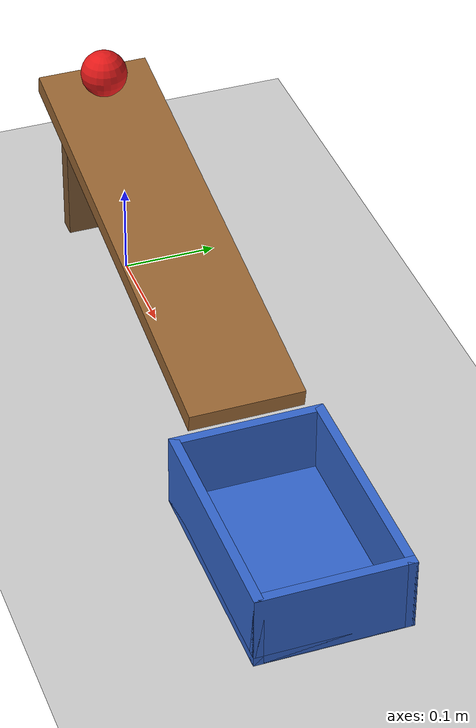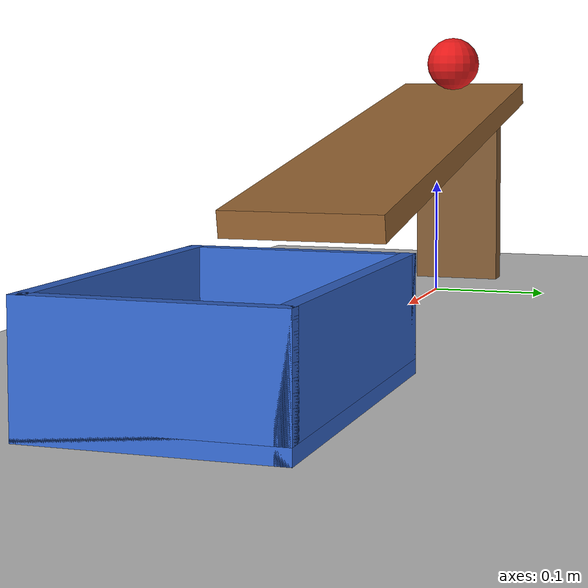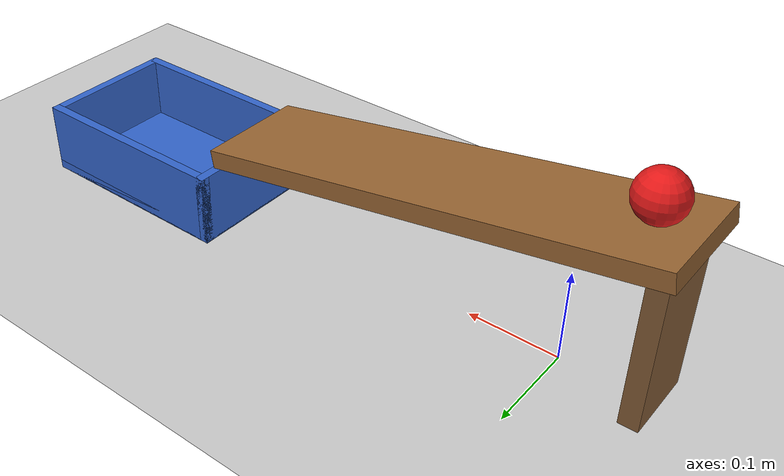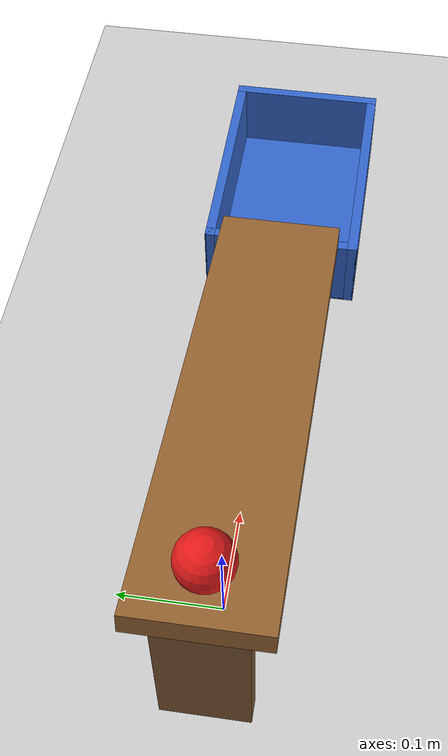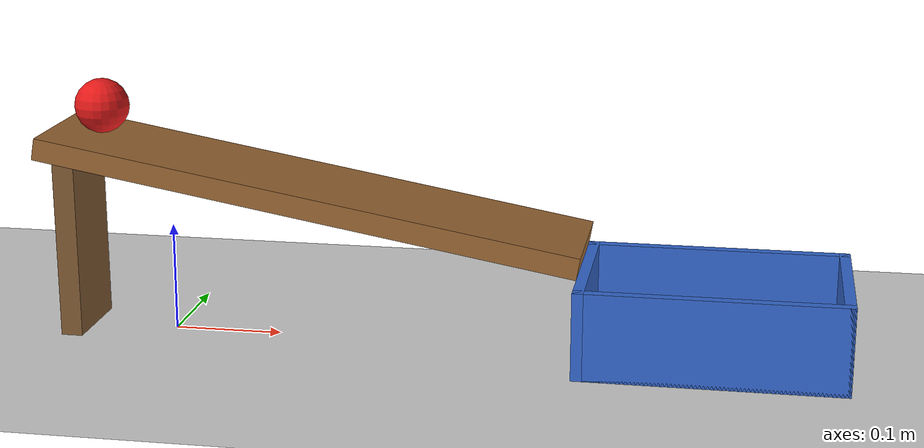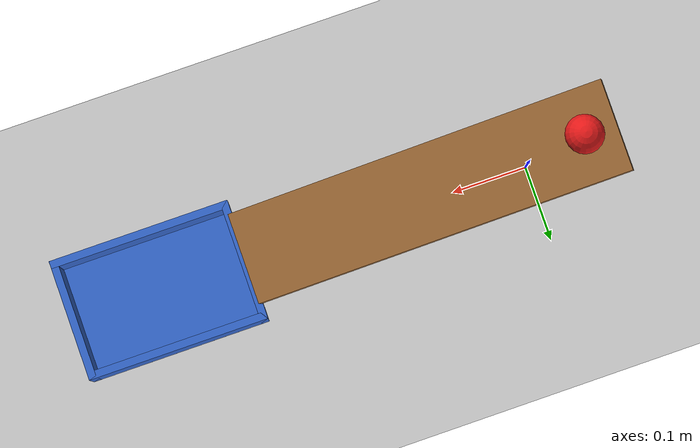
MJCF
<mujoco model="ball_ramp_cup">
  <option timestep="0.002"/>
  <worldbody>
    <light name="sun" pos="0.2 -0.5 1.5" dir="0 0.3 -1" directional="true"/>
    <geom name="floor" type="plane" size="2 2 0.1" rgba="0.8 0.8 0.8 1"/>
    <geom name="ramp" type="box" size="0.25 0.06 0.01" pos="0.1371 0 0.1386" euler="0 10 0" rgba="0.6 0.4 0.2 1"/>
    <geom name="ramp_post" type="box" size="0.01 0.04 0.0825" pos="-0.09 0 0.0825" rgba="0.5 0.35 0.2 1"/>
    <body name="cup" pos="0.5 0 0">
      <geom name="cup_floor" type="box" size="0.12 0.08 0.005" pos="0 0 0.005" friction="1 0.005 0.003" rgba="0.2 0.4 0.8 1"/>
      <geom name="cup_wall_near" type="box" size="0.005 0.08 0.04" pos="-0.115 0 0.04" rgba="0.2 0.4 0.8 1"/>
      <geom name="cup_wall_far" type="box" size="0.005 0.08 0.04" pos="0.115 0 0.04" rgba="0.2 0.4 0.8 1"/>
      <geom name="cup_wall_left" type="box" size="0.12 0.005 0.04" pos="0 0.075 0.04" rgba="0.2 0.4 0.8 1"/>
      <geom name="cup_wall_right" type="box" size="0.12 0.005 0.04" pos="0 -0.075 0.04" rgba="0.2 0.4 0.8 1"/>
    </body>
    <body name="ball" pos="-0.0637 0 0.211">
      <freejoint name="ball_free"/>
      <geom name="ball" type="sphere" size="0.025" condim="6" friction="1 0.005 0.0005" rgba="0.9 0.1 0.1 1"/>
    </body>
  </worldbody>
  <keyframe>
    <key name="start" qpos="-0.0637 0 0.211 1 0 0 0" qvel="0 0 0 0 0 0"/>
  </keyframe>
</mujoco>
